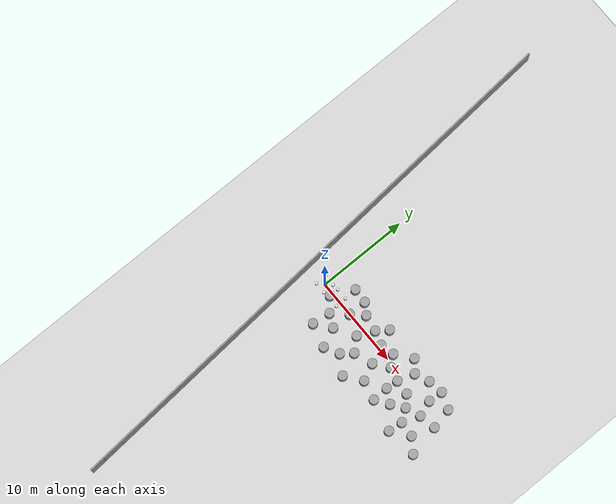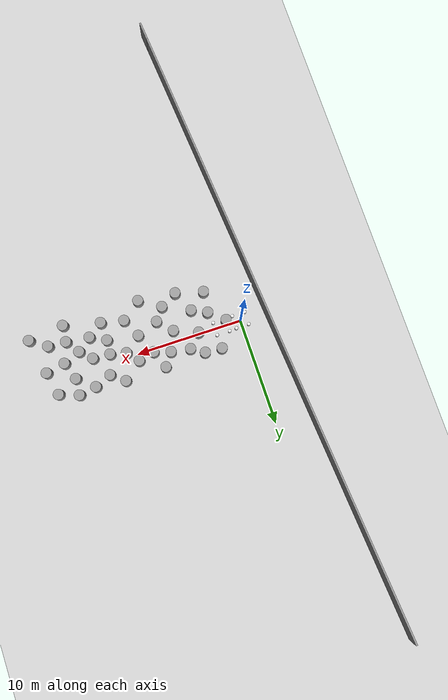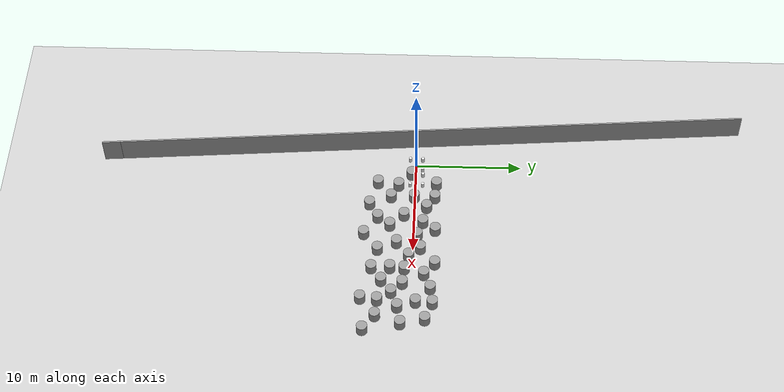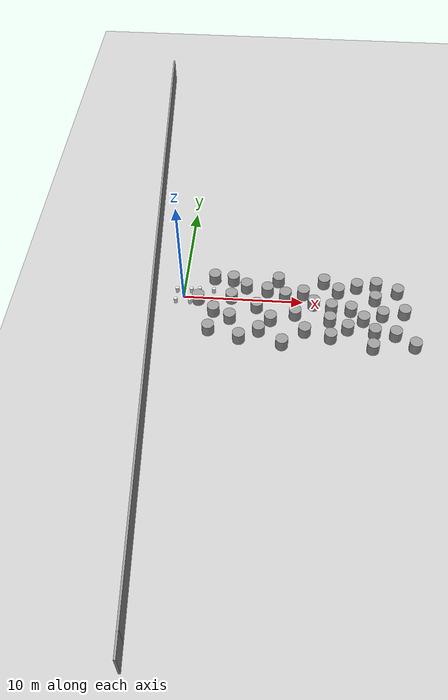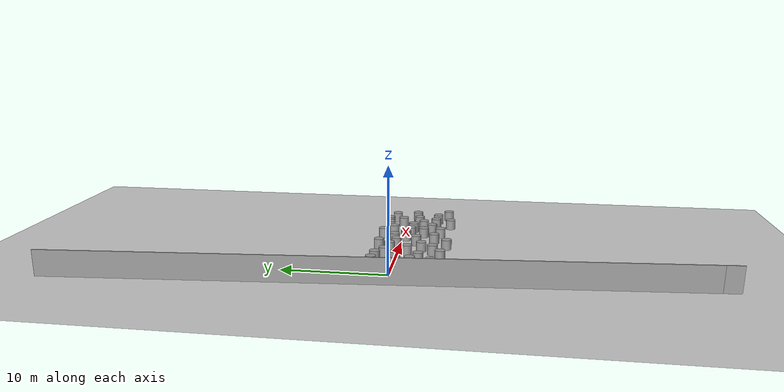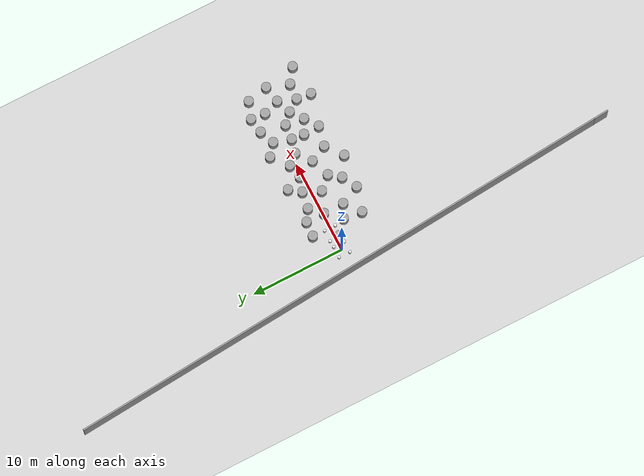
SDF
<sdf version="1.6">
 <world name="default">
  <model name="ground_plane">
   <static>1</static>
   <link name="link">
    <collision name="collision">
     <geometry><plane><normal>0 0 1</normal><size>100 100</size></plane></geometry>
     <surface>
      <contact><collide_bitmask>65535</collide_bitmask></contact>
      <friction><ode><mu>100</mu><mu2>50</mu2></ode></friction>
     </surface>
    </collision>
    <visual name="visual">
     <cast_shadows>0</cast_shadows>
     <geometry><plane><normal>0 0 1</normal><size>100 100</size></plane></geometry>
     <material>
      <script><uri>file://media/materials/scripts/gazebo.material</uri><name>Gazebo/Grey</name></script>
     </material>
    </visual>
   </link>
  </model>
  <model name="obstacle">
   <link name="obstacle">
    <collision name="obstacle_1">
     <pose>-0.6 -0.6 0.25 0 -0 0</pose>
     <geometry><cylinder><radius>0.15</radius><length>0.5</length></cylinder></geometry>
    </collision>
    <visual name="obstacle_1">
     <pose>-0.6 -0.6 0.25 0 -0 0</pose>
     <geometry><cylinder><radius>0.15</radius><length>0.5</length></cylinder></geometry>
     <material>
      <script><uri>file://media/materials/scripts/gazebo.material</uri><name>Gazebo/White</name></script>
     </material>
    </visual>
    <collision name="obstacle_2">
     <pose>-0.6 0.6 0.25 0 -0 0</pose>
     <geometry><cylinder><radius>0.15</radius><length>0.5</length></cylinder></geometry>
    </collision>
    <visual name="obstacle_2">
     <pose>-0.6 0.6 0.25 0 -0 0</pose>
     <geometry><cylinder><radius>0.15</radius><length>0.5</length></cylinder></geometry>
     <material>
      <script><uri>file://media/materials/scripts/gazebo.material</uri><name>Gazebo/White</name></script>
     </material>
    </visual>
    <collision name="obstacle_3">
     <pose>0.6 -0.6 0.25 0 -0 0</pose>
     <geometry><cylinder><radius>0.15</radius><length>0.5</length></cylinder></geometry>
    </collision>
    <visual name="obstacle_3">
     <pose>0.6 -0.6 0.25 0 -0 0</pose>
     <geometry><cylinder><radius>0.15</radius><length>0.5</length></cylinder></geometry>
     <material>
      <script><uri>file://media/materials/scripts/gazebo.material</uri><name>Gazebo/White</name></script>
     </material>
    </visual>
    <collision name="obstacle_4">
     <pose>0.6 0.6 0.25 0 -0 0</pose>
     <geometry><cylinder><radius>0.15</radius><length>0.5</length></cylinder></geometry>
    </collision>
    <visual name="obstacle_4">
     <pose>0.6 0.6 0.25 0 -0 0</pose>
     <geometry><cylinder><radius>0.15</radius><length>0.5</length></cylinder></geometry>
     <material>
      <script><uri>file://media/materials/scripts/gazebo.material</uri><name>Gazebo/White</name></script>
     </material>
    </visual>
    <inertial>
     <inertia><ixx>1</ixx><ixy>0</ixy><ixz>0</ixz><iyy>1</iyy><iyz>0</iyz><izz>1</izz></inertia>
     <mass>1</mass>
    </inertial>
   </link>
  </model>
  <model name="obstacle_clone">
   <pose>1.88303 0.06065 0.049997 -4e-06 5e-06 0</pose>
   <link name="obstacle_clone">
    <collision name="obstacle_01">
     <pose>-0.6 -0.6 0.25 0 -0 0</pose>
     <geometry><cylinder><radius>0.15</radius><length>0.5</length></cylinder></geometry>
    </collision>
    <visual name="obstacle_01">
     <pose>-0.6 -0.6 0.25 0 -0 0</pose>
     <geometry><cylinder><radius>0.15</radius><length>0.5</length></cylinder></geometry>
     <material>
      <script><uri>file://media/materials/scripts/gazebo.material</uri><name>Gazebo/White</name></script>
     </material>
    </visual>
    <collision name="obstacle_02">
     <pose>-0.6 0.6 0.25 0 -0 0</pose>
     <geometry><cylinder><radius>0.15</radius><length>0.5</length></cylinder></geometry>
    </collision>
    <visual name="obstacle_02">
     <pose>-0.6 0.6 0.25 0 -0 0</pose>
     <geometry><cylinder><radius>0.15</radius><length>0.5</length></cylinder></geometry>
     <material>
      <script><uri>file://media/materials/scripts/gazebo.material</uri><name>Gazebo/White</name></script>
     </material>
    </visual>
    <collision name="obstacle_03">
     <pose>0.6 -0.6 0.25 0 -0 0</pose>
     <geometry><cylinder><radius>0.15</radius><length>0.5</length></cylinder></geometry>
    </collision>
    <visual name="obstacle_03">
     <pose>0.6 -0.6 0.25 0 -0 0</pose>
     <geometry><cylinder><radius>0.15</radius><length>0.5</length></cylinder></geometry>
     <material>
      <script><uri>file://media/materials/scripts/gazebo.material</uri><name>Gazebo/White</name></script>
     </material>
    </visual>
    <collision name="obstacle_04">
     <pose>0.6 0.6 0.25 0 -0 0</pose>
     <geometry><cylinder><radius>0.15</radius><length>0.5</length></cylinder></geometry>
    </collision>
    <visual name="obstacle_04">
     <pose>0.6 0.6 0.25 0 -0 0</pose>
     <geometry><cylinder><radius>0.15</radius><length>0.5</length></cylinder></geometry>
     <material>
      <script><uri>file://media/materials/scripts/gazebo.material</uri><name>Gazebo/White</name></script>
     </material>
    </visual>
    <inertial>
     <inertia><ixx>1</ixx><ixy>0</ixy><ixz>0</ixz><iyy>1</iyy><iyz>0</iyz><izz>1</izz></inertia>
     <mass>1</mass>
    </inertial>
   </link>
  </model>
  <model name="unit_cylinder">
   <pose>6.99929 0.832209 0.499994 -4e-06 -3e-06 -0</pose>
   <link name="link">
    <inertial>
     <mass>1</mass>
     <inertia><ixx>0.145833</ixx><ixy>0</ixy><ixz>0</ixz><iyy>0.145833</iyy><iyz>0</iyz><izz>0.125</izz></inertia>
    </inertial>
    <collision name="collision">
     <geometry><cylinder><radius>0.5</radius><length>1</length></cylinder></geometry>
    </collision>
    <visual name="visual">
     <geometry><cylinder><radius>0.5</radius><length>1</length></cylinder></geometry>
     <material>
      <script><name>Gazebo/Grey</name><uri>file://media/materials/scripts/gazebo.material</uri></script>
     </material>
    </visual>
   </link>
  </model>
  <model name="unit_cylinder_0">
   <pose>4.06146 -2.25804 0.499998 3e-06 -2e-06 0</pose>
   <link name="link">
    <inertial>
     <mass>1</mass>
     <inertia><ixx>0.145833</ixx><ixy>0</ixy><ixz>0</ixz><iyy>0.145833</iyy><iyz>0</iyz><izz>0.125</izz></inertia>
    </inertial>
    <collision name="collision">
     <geometry><cylinder><radius>0.5</radius><length>1</length></cylinder></geometry>
    </collision>
    <visual name="visual">
     <geometry><cylinder><radius>0.5</radius><length>1</length></cylinder></geometry>
     <material>
      <script><name>Gazebo/Grey</name><uri>file://media/materials/scripts/gazebo.material</uri></script>
     </material>
    </visual>
   </link>
  </model>
  <model name="unit_cylinder_1">
   <pose>11.6938 2.06939 0.499998 3e-06 -2e-06 0</pose>
   <link name="link">
    <inertial>
     <mass>1</mass>
     <inertia><ixx>0.145833</ixx><ixy>0</ixy><ixz>0</ixz><iyy>0.145833</iyy><iyz>0</iyz><izz>0.125</izz></inertia>
    </inertial>
    <collision name="collision">
     <geometry><cylinder><radius>0.5</radius><length>1</length></cylinder></geometry>
    </collision>
    <visual name="visual">
     <geometry><cylinder><radius>0.5</radius><length>1</length></cylinder></geometry>
     <material>
      <script><name>Gazebo/Grey</name><uri>file://media/materials/scripts/gazebo.material</uri></script>
     </material>
    </visual>
   </link>
  </model>
  <model name="unit_cylinder_2">
   <pose>9.38691 -1.54603 0.499998 3e-06 -2e-06 0</pose>
   <link name="link">
    <inertial>
     <mass>1</mass>
     <inertia><ixx>0.145833</ixx><ixy>0</ixy><ixz>0</ixz><iyy>0.145833</iyy><iyz>0</iyz><izz>0.125</izz></inertia>
    </inertial>
    <collision name="collision">
     <geometry><cylinder><radius>0.5</radius><length>1</length></cylinder></geometry>
    </collision>
    <visual name="visual">
     <geometry><cylinder><radius>0.5</radius><length>1</length></cylinder></geometry>
     <material>
      <script><name>Gazebo/Grey</name><uri>file://media/materials/scripts/gazebo.material</uri></script>
     </material>
    </visual>
   </link>
  </model>
  <model name="unit_cylinder_3">
   <pose>15.6885 -4.63383 0.499998 3e-06 -2e-06 0</pose>
   <link name="link">
    <inertial>
     <mass>1</mass>
     <inertia><ixx>0.145833</ixx><ixy>0</ixy><ixz>0</ixz><iyy>0.145833</iyy><iyz>0</iyz><izz>0.125</izz></inertia>
    </inertial>
    <collision name="collision">
     <geometry><cylinder><radius>0.5</radius><length>1</length></cylinder></geometry>
    </collision>
    <visual name="visual">
     <geometry><cylinder><radius>0.5</radius><length>1</length></cylinder></geometry>
     <material>
      <script><name>Gazebo/Grey</name><uri>file://media/materials/scripts/gazebo.material</uri></script>
     </material>
    </visual>
   </link>
  </model>
  <model name="unit_cylinder_4">
   <pose>15.969 0.435377 0.499998 3e-06 -2e-06 0</pose>
   <link name="link">
    <inertial>
     <mass>1</mass>
     <inertia><ixx>0.145833</ixx><ixy>0</ixy><ixz>0</ixz><iyy>0.145833</iyy><iyz>0</iyz><izz>0.125</izz></inertia>
    </inertial>
    <collision name="collision">
     <geometry><cylinder><radius>0.5</radius><length>1</length></cylinder></geometry>
    </collision>
    <visual name="visual">
     <geometry><cylinder><radius>0.5</radius><length>1</length></cylinder></geometry>
     <material>
      <script><name>Gazebo/Grey</name><uri>file://media/materials/scripts/gazebo.material</uri></script>
     </material>
    </visual>
   </link>
  </model>
  <model name="unit_cylinder_13">
   <pose>12.3468 -0.72397 0.499993 -4e-06 -2e-06 -0</pose>
   <link name="link">
    <inertial>
     <mass>1</mass>
     <inertia><ixx>0.145833</ixx><ixy>0</ixy><ixz>0</ixz><iyy>0.145833</iyy><iyz>0</iyz><izz>0.125</izz></inertia>
    </inertial>
    <collision name="collision">
     <geometry><cylinder><radius>0.5</radius><length>1</length></cylinder></geometry>
    </collision>
    <visual name="visual">
     <geometry><cylinder><radius>0.5</radius><length>1</length></cylinder></geometry>
     <material>
      <script><name>Gazebo/Grey</name><uri>file://media/materials/scripts/gazebo.material</uri></script>
     </material>
    </visual>
   </link>
  </model>
  <model name="unit_cylinder_31">
   <pose>10.2116 -3.2923 0.499992 -3e-06 2e-06 0</pose>
   <link name="link">
    <inertial>
     <mass>1</mass>
     <inertia><ixx>0.145833</ixx><ixy>0</ixy><ixz>0</ixz><iyy>0.145833</iyy><iyz>0</iyz><izz>0.125</izz></inertia>
    </inertial>
    <collision name="collision">
     <geometry><cylinder><radius>0.5</radius><length>1</length></cylinder></geometry>
    </collision>
    <visual name="visual">
     <geometry><cylinder><radius>0.5</radius><length>1</length></cylinder></geometry>
     <material>
      <script><name>Gazebo/Grey</name><uri>file://media/materials/scripts/gazebo.material</uri></script>
     </material>
    </visual>
   </link>
  </model>
  <model name="wall_up02_1">
   <pose>-2.45978 0.60731 0 0 -0 1.64986</pose>
   <link name="Wall_0">
    <collision name="Wall_0_Collision">
     <geometry><box><size>60 0.15 2.5</size></box></geometry>
     <pose>0 0 1.25 0 -0 0</pose>
    </collision>
    <visual name="Wall_0_Visual">
     <pose>0 0 1.25 0 -0 0</pose>
     <geometry><box><size>60 0.15 2.5</size></box></geometry>
     <material>
      <script><uri>file://media/materials/scripts/gazebo.material</uri><name>Gazebo/Grey</name></script>
      <ambient>1 1 1 1</ambient>
     </material>
     <meta><layer>0</layer></meta>
    </visual>
    <pose>0.799999 0 0 0 -0 3.14159</pose>
   </link>
   <link name="Wall_1">
    <collision name="Wall_1_Collision">
     <geometry><box><size>1.75 0.15 2.5</size></box></geometry>
     <pose>0 0 1.25 0 -0 0</pose>
    </collision>
    <visual name="Wall_1_Visual">
     <pose>0 0 1.25 0 -0 0</pose>
     <geometry><box><size>1.75 0.15 2.5</size></box></geometry>
     <material>
      <script><uri>file://media/materials/scripts/gazebo.material</uri><name>Gazebo/Grey</name></script>
      <ambient>0 0 0 1</ambient>
     </material>
     <meta><layer>0</layer></meta>
    </visual>
    <pose>-29.925 0 0 0 -0 3.14159</pose>
   </link>
   <static>1</static>
  </model>
  <model name="unit_cylinder_32">
   <pose>2.42276 -3.5512 0.499998 3e-06 -2e-06 0</pose>
   <link name="link">
    <inertial>
     <mass>1</mass>
     <inertia><ixx>0.145833</ixx><ixy>0</ixy><ixz>0</ixz><iyy>0.145833</iyy><iyz>0</iyz><izz>0.125</izz></inertia>
    </inertial>
    <collision name="collision">
     <geometry><cylinder><radius>0.5</radius><length>1</length></cylinder></geometry>
    </collision>
    <visual name="visual">
     <geometry><cylinder><radius>0.5</radius><length>1</length></cylinder></geometry>
     <material>
      <script><name>Gazebo/Grey</name><uri>file://media/materials/scripts/gazebo.material</uri></script>
     </material>
    </visual>
   </link>
  </model>
  <model name="unit_cylinder_33">
   <pose>4.0393 -0.07105 0.499998 3e-06 -2e-06 0</pose>
   <link name="link">
    <inertial>
     <mass>1</mass>
     <inertia><ixx>0.145833</ixx><ixy>0</ixy><ixz>0</ixz><iyy>0.145833</iyy><iyz>0</iyz><izz>0.125</izz></inertia>
    </inertial>
    <collision name="collision">
     <geometry><cylinder><radius>0.5</radius><length>1</length></cylinder></geometry>
    </collision>
    <visual name="visual">
     <geometry><cylinder><radius>0.5</radius><length>1</length></cylinder></geometry>
     <material>
      <script><name>Gazebo/Grey</name><uri>file://media/materials/scripts/gazebo.material</uri></script>
     </material>
    </visual>
   </link>
  </model>
  <model name="unit_cylinder_34">
   <pose>2.46949 1.99363 0.499994 -4e-06 -3e-06 -0</pose>
   <link name="link">
    <inertial>
     <mass>1</mass>
     <inertia><ixx>0.145833</ixx><ixy>0</ixy><ixz>0</ixz><iyy>0.145833</iyy><iyz>0</iyz><izz>0.125</izz></inertia>
    </inertial>
    <collision name="collision">
     <geometry><cylinder><radius>0.5</radius><length>1</length></cylinder></geometry>
    </collision>
    <visual name="visual">
     <geometry><cylinder><radius>0.5</radius><length>1</length></cylinder></geometry>
     <material>
      <script><name>Gazebo/Grey</name><uri>file://media/materials/scripts/gazebo.material</uri></script>
     </material>
    </visual>
   </link>
  </model>
  <model name="unit_cylinder_35">
   <pose>7.86543 2.01658 0.499998 3e-06 -2e-06 0</pose>
   <link name="link">
    <inertial>
     <mass>1</mass>
     <inertia><ixx>0.145833</ixx><ixy>0</ixy><ixz>0</ixz><iyy>0.145833</iyy><iyz>0</iyz><izz>0.125</izz></inertia>
    </inertial>
    <collision name="collision">
     <geometry><cylinder><radius>0.5</radius><length>1</length></cylinder></geometry>
    </collision>
    <visual name="visual">
     <geometry><cylinder><radius>0.5</radius><length>1</length></cylinder></geometry>
     <material>
      <script><name>Gazebo/Grey</name><uri>file://media/materials/scripts/gazebo.material</uri></script>
     </material>
    </visual>
   </link>
  </model>
  <model name="unit_cylinder_36">
   <pose>6.51456 -3.42246 0.499994 -4e-06 -3e-06 -0</pose>
   <link name="link">
    <inertial>
     <mass>1</mass>
     <inertia><ixx>0.145833</ixx><ixy>0</ixy><ixz>0</ixz><iyy>0.145833</iyy><iyz>0</iyz><izz>0.125</izz></inertia>
    </inertial>
    <collision name="collision">
     <geometry><cylinder><radius>0.5</radius><length>1</length></cylinder></geometry>
    </collision>
    <visual name="visual">
     <geometry><cylinder><radius>0.5</radius><length>1</length></cylinder></geometry>
     <material>
      <script><name>Gazebo/Grey</name><uri>file://media/materials/scripts/gazebo.material</uri></script>
     </material>
    </visual>
   </link>
  </model>
  <model name="unit_cylinder_37">
   <pose>6.19796 -0.96 0.499998 3e-06 -2e-06 0</pose>
   <link name="link">
    <inertial>
     <mass>1</mass>
     <inertia><ixx>0.145833</ixx><ixy>0</ixy><ixz>0</ixz><iyy>0.145833</iyy><iyz>0</iyz><izz>0.125</izz></inertia>
    </inertial>
    <collision name="collision">
     <geometry><cylinder><radius>0.5</radius><length>1</length></cylinder></geometry>
    </collision>
    <visual name="visual">
     <geometry><cylinder><radius>0.5</radius><length>1</length></cylinder></geometry>
     <material>
      <script><name>Gazebo/Grey</name><uri>file://media/materials/scripts/gazebo.material</uri></script>
     </material>
    </visual>
   </link>
  </model>
  <model name="unit_cylinder_38">
   <pose>13.6872 -2.8073 0.499999 0 -0 0</pose>
   <link name="link">
    <inertial>
     <mass>1</mass>
     <inertia><ixx>0.145833</ixx><ixy>0</ixy><ixz>0</ixz><iyy>0.145833</iyy><iyz>0</iyz><izz>0.125</izz></inertia>
    </inertial>
    <collision name="collision">
     <geometry><cylinder><radius>0.5</radius><length>1</length></cylinder></geometry>
    </collision>
    <visual name="visual">
     <geometry><cylinder><radius>0.5</radius><length>1</length></cylinder></geometry>
     <material>
      <script><name>Gazebo/Grey</name><uri>file://media/materials/scripts/gazebo.material</uri></script>
     </material>
    </visual>
   </link>
  </model>
  <model name="unit_cylinder_39">
   <pose>12.2342 -2.05305 0.499992 -3e-06 2e-06 0</pose>
   <link name="link">
    <inertial>
     <mass>1</mass>
     <inertia><ixx>0.145833</ixx><ixy>0</ixy><ixz>0</ixz><iyy>0.145833</iyy><iyz>0</iyz><izz>0.125</izz></inertia>
    </inertial>
    <collision name="collision">
     <geometry><cylinder><radius>0.5</radius><length>1</length></cylinder></geometry>
    </collision>
    <visual name="visual">
     <geometry><cylinder><radius>0.5</radius><length>1</length></cylinder></geometry>
     <material>
      <script><name>Gazebo/Grey</name><uri>file://media/materials/scripts/gazebo.material</uri></script>
     </material>
    </visual>
   </link>
  </model>
  <model name="unit_cylinder_40">
   <pose>9.99238 0.699421 0.499993 -3e-06 2e-06 0</pose>
   <link name="link">
    <inertial>
     <mass>1</mass>
     <inertia><ixx>0.145833</ixx><ixy>0</ixy><ixz>0</ixz><iyy>0.145833</iyy><iyz>0</iyz><izz>0.125</izz></inertia>
    </inertial>
    <collision name="collision">
     <geometry><cylinder><radius>0.5</radius><length>1</length></cylinder></geometry>
    </collision>
    <visual name="visual">
     <geometry><cylinder><radius>0.5</radius><length>1</length></cylinder></geometry>
     <material>
      <script><name>Gazebo/Grey</name><uri>file://media/materials/scripts/gazebo.material</uri></script>
     </material>
    </visual>
   </link>
  </model>
  <model name="unit_cylinder_41">
   <pose>16.0707 1.97233 0.499998 3e-06 -3e-06 0</pose>
   <link name="link">
    <inertial>
     <mass>1</mass>
     <inertia><ixx>0.145833</ixx><ixy>0</ixy><ixz>0</ixz><iyy>0.145833</iyy><iyz>0</iyz><izz>0.125</izz></inertia>
    </inertial>
    <collision name="collision">
     <geometry><cylinder><radius>0.5</radius><length>1</length></cylinder></geometry>
    </collision>
    <visual name="visual">
     <geometry><cylinder><radius>0.5</radius><length>1</length></cylinder></geometry>
     <material>
      <script><name>Gazebo/Grey</name><uri>file://media/materials/scripts/gazebo.material</uri></script>
     </material>
    </visual>
   </link>
  </model>
  <model name="unit_cylinder_42">
   <pose>18.3381 -0.893437 0.499998 3e-06 -3e-06 0</pose>
   <link name="link">
    <inertial>
     <mass>1</mass>
     <inertia><ixx>0.145833</ixx><ixy>0</ixy><ixz>0</ixz><iyy>0.145833</iyy><iyz>0</iyz><izz>0.125</izz></inertia>
    </inertial>
    <collision name="collision">
     <geometry><cylinder><radius>0.5</radius><length>1</length></cylinder></geometry>
    </collision>
    <visual name="visual">
     <geometry><cylinder><radius>0.5</radius><length>1</length></cylinder></geometry>
     <material>
      <script><name>Gazebo/Grey</name><uri>file://media/materials/scripts/gazebo.material</uri></script>
     </material>
    </visual>
   </link>
  </model>
  <model name="unit_cylinder_53">
   <pose>4.96385 -4.25942 0.499992 -3e-06 3e-06 0</pose>
   <link name="link">
    <inertial>
     <mass>1</mass>
     <inertia><ixx>0.145833</ixx><ixy>0</ixy><ixz>0</ixz><iyy>0.145833</iyy><iyz>0</iyz><izz>0.125</izz></inertia>
    </inertial>
    <collision name="collision">
     <geometry><cylinder><radius>0.5</radius><length>1</length></cylinder></geometry>
    </collision>
    <visual name="visual">
     <geometry><cylinder><radius>0.5</radius><length>1</length></cylinder></geometry>
     <material>
      <script><name>Gazebo/Grey</name><uri>file://media/materials/scripts/gazebo.material</uri></script>
     </material>
    </visual>
   </link>
  </model>
  <model name="unit_cylinder_54">
   <pose>1.29721 -0.388281 0.499992 -3e-06 3e-06 0</pose>
   <link name="link">
    <inertial>
     <mass>1</mass>
     <inertia><ixx>0.145833</ixx><ixy>0</ixy><ixz>0</ixz><iyy>0.145833</iyy><iyz>0</iyz><izz>0.125</izz></inertia>
    </inertial>
    <collision name="collision">
     <geometry><cylinder><radius>0.5</radius><length>1</length></cylinder></geometry>
    </collision>
    <visual name="visual">
     <geometry><cylinder><radius>0.5</radius><length>1</length></cylinder></geometry>
     <material>
      <script><name>Gazebo/Grey</name><uri>file://media/materials/scripts/gazebo.material</uri></script>
     </material>
    </visual>
   </link>
  </model>
  <model name="unit_cylinder_55">
   <pose>8.43822 -4.65171 0.499998 3e-06 -3e-06 0</pose>
   <link name="link">
    <inertial>
     <mass>1</mass>
     <inertia><ixx>0.145833</ixx><ixy>0</ixy><ixz>0</ixz><iyy>0.145833</iyy><iyz>0</iyz><izz>0.125</izz></inertia>
    </inertial>
    <collision name="collision">
     <geometry><cylinder><radius>0.5</radius><length>1</length></cylinder></geometry>
    </collision>
    <visual name="visual">
     <geometry><cylinder><radius>0.5</radius><length>1</length></cylinder></geometry>
     <material>
      <script><name>Gazebo/Grey</name><uri>file://media/materials/scripts/gazebo.material</uri></script>
     </material>
    </visual>
   </link>
  </model>
  <model name="unit_cylinder_56">
   <pose>12.9038 1.09735 0.499998 3e-06 4e-06 -0</pose>
   <link name="link">
    <inertial>
     <mass>1</mass>
     <inertia><ixx>0.145833</ixx><ixy>0</ixy><ixz>0</ixz><iyy>0.145833</iyy><iyz>0</iyz><izz>0.125</izz></inertia>
    </inertial>
    <collision name="collision">
     <geometry><cylinder><radius>0.5</radius><length>1</length></cylinder></geometry>
    </collision>
    <visual name="visual">
     <geometry><cylinder><radius>0.5</radius><length>1</length></cylinder></geometry>
     <material>
      <script><name>Gazebo/Grey</name><uri>file://media/materials/scripts/gazebo.material</uri></script>
     </material>
    </visual>
   </link>
  </model>
  <model name="unit_cylinder_57">
   <pose>14.9718 -1.83779 0.499998 3e-06 4e-06 -0</pose>
   <link name="link">
    <inertial>
     <mass>1</mass>
     <inertia><ixx>0.145833</ixx><ixy>0</ixy><ixz>0</ixz><iyy>0.145833</iyy><iyz>0</iyz><izz>0.125</izz></inertia>
    </inertial>
    <collision name="collision">
     <geometry><cylinder><radius>0.5</radius><length>1</length></cylinder></geometry>
    </collision>
    <visual name="visual">
     <geometry><cylinder><radius>0.5</radius><length>1</length></cylinder></geometry>
     <material>
      <script><name>Gazebo/Grey</name><uri>file://media/materials/scripts/gazebo.material</uri></script>
     </material>
    </visual>
   </link>
  </model>
  <model name="unit_cylinder_58">
   <pose>12.3108 -3.7773 0.499998 3e-06 4e-06 -0</pose>
   <link name="link">
    <inertial>
     <mass>1</mass>
     <inertia><ixx>0.145833</ixx><ixy>0</ixy><ixz>0</ixz><iyy>0.145833</iyy><iyz>0</iyz><izz>0.125</izz></inertia>
    </inertial>
    <collision name="collision">
     <geometry><cylinder><radius>0.5</radius><length>1</length></cylinder></geometry>
    </collision>
    <visual name="visual">
     <geometry><cylinder><radius>0.5</radius><length>1</length></cylinder></geometry>
     <material>
      <script><name>Gazebo/Grey</name><uri>file://media/materials/scripts/gazebo.material</uri></script>
     </material>
    </visual>
   </link>
  </model>
  <model name="unit_cylinder_59">
   <pose>7.40503 -2.25633 0.499998 3e-06 4e-06 -0</pose>
   <link name="link">
    <inertial>
     <mass>1</mass>
     <inertia><ixx>0.145833</ixx><ixy>0</ixy><ixz>0</ixz><iyy>0.145833</iyy><iyz>0</iyz><izz>0.125</izz></inertia>
    </inertial>
    <collision name="collision">
     <geometry><cylinder><radius>0.5</radius><length>1</length></cylinder></geometry>
    </collision>
    <visual name="visual">
     <geometry><cylinder><radius>0.5</radius><length>1</length></cylinder></geometry>
     <material>
      <script><name>Gazebo/Grey</name><uri>file://media/materials/scripts/gazebo.material</uri></script>
     </material>
    </visual>
   </link>
  </model>
  <model name="unit_cylinder_60">
   <pose>17.5274 -3.20794 0.499993 -3e-06 -3e-06 0</pose>
   <link name="link">
    <inertial>
     <mass>1</mass>
     <inertia><ixx>0.145833</ixx><ixy>0</ixy><ixz>0</ixz><iyy>0.145833</iyy><iyz>0</iyz><izz>0.125</izz></inertia>
    </inertial>
    <collision name="collision">
     <geometry><cylinder><radius>0.5</radius><length>1</length></cylinder></geometry>
    </collision>
    <visual name="visual">
     <geometry><cylinder><radius>0.5</radius><length>1</length></cylinder></geometry>
     <material>
      <script><name>Gazebo/Grey</name><uri>file://media/materials/scripts/gazebo.material</uri></script>
     </material>
    </visual>
   </link>
  </model>
  <model name="unit_cylinder_62">
   <pose>17.8474 1.325 0.499993 -3e-06 -3e-06 0</pose>
   <link name="link">
    <inertial>
     <mass>1</mass>
     <inertia><ixx>0.145833</ixx><ixy>0</ixy><ixz>0</ixz><iyy>0.145833</iyy><iyz>0</iyz><izz>0.125</izz></inertia>
    </inertial>
    <collision name="collision">
     <geometry><cylinder><radius>0.5</radius><length>1</length></cylinder></geometry>
    </collision>
    <visual name="visual">
     <geometry><cylinder><radius>0.5</radius><length>1</length></cylinder></geometry>
     <material>
      <script><name>Gazebo/Grey</name><uri>file://media/materials/scripts/gazebo.material</uri></script>
     </material>
    </visual>
   </link>
  </model>
  <model name="unit_cylinder_65">
   <pose>10.8872 -0.359234 0.499993 -3e-06 -4e-06 -0</pose>
   <link name="link">
    <inertial>
     <mass>1</mass>
     <inertia><ixx>0.145833</ixx><ixy>0</ixy><ixz>0</ixz><iyy>0.145833</iyy><iyz>0</iyz><izz>0.125</izz></inertia>
    </inertial>
    <collision name="collision">
     <geometry><cylinder><radius>0.5</radius><length>1</length></cylinder></geometry>
    </collision>
    <visual name="visual">
     <geometry><cylinder><radius>0.5</radius><length>1</length></cylinder></geometry>
     <material>
      <script><name>Gazebo/Grey</name><uri>file://media/materials/scripts/gazebo.material</uri></script>
     </material>
    </visual>
   </link>
  </model>
  <model name="unit_cylinder_66">
   <pose>13.952 -0.84442 0.499993 -3e-06 -4e-06 -0</pose>
   <link name="link">
    <inertial>
     <mass>1</mass>
     <inertia><ixx>0.145833</ixx><ixy>0</ixy><ixz>0</ixz><iyy>0.145833</iyy><iyz>0</iyz><izz>0.125</izz></inertia>
    </inertial>
    <collision name="collision">
     <geometry><cylinder><radius>0.5</radius><length>1</length></cylinder></geometry>
    </collision>
    <visual name="visual">
     <geometry><cylinder><radius>0.5</radius><length>1</length></cylinder></geometry>
     <material>
      <script><name>Gazebo/Grey</name><uri>file://media/materials/scripts/gazebo.material</uri></script>
     </material>
    </visual>
   </link>
  </model>
  <model name="unit_cylinder_67">
   <pose>14.4509 1.72355 0.499993 -3e-06 -4e-06 -0</pose>
   <link name="link">
    <inertial>
     <mass>1</mass>
     <inertia><ixx>0.145833</ixx><ixy>0</ixy><ixz>0</ixz><iyy>0.145833</iyy><iyz>0</iyz><izz>0.125</izz></inertia>
    </inertial>
    <collision name="collision">
     <geometry><cylinder><radius>0.5</radius><length>1</length></cylinder></geometry>
    </collision>
    <visual name="visual">
     <geometry><cylinder><radius>0.5</radius><length>1</length></cylinder></geometry>
     <material>
      <script><name>Gazebo/Grey</name><uri>file://media/materials/scripts/gazebo.material</uri></script>
     </material>
    </visual>
   </link>
  </model>
  <model name="unit_cylinder_68">
   <pose>8.50384 0.347204 0.499997 3e-06 4e-06 -0</pose>
   <link name="link">
    <inertial>
     <mass>1</mass>
     <inertia><ixx>0.145833</ixx><ixy>0</ixy><ixz>0</ixz><iyy>0.145833</iyy><iyz>0</iyz><izz>0.125</izz></inertia>
    </inertial>
    <collision name="collision">
     <geometry><cylinder><radius>0.5</radius><length>1</length></cylinder></geometry>
    </collision>
    <visual name="visual">
     <geometry><cylinder><radius>0.5</radius><length>1</length></cylinder></geometry>
     <material>
      <script><name>Gazebo/Grey</name><uri>file://media/materials/scripts/gazebo.material</uri></script>
     </material>
    </visual>
   </link>
  </model>
  <model name="unit_cylinder_69">
   <pose>5.22097 1.13735 0.499997 3e-06 4e-06 -0</pose>
   <link name="link">
    <inertial>
     <mass>1</mass>
     <inertia><ixx>0.145833</ixx><ixy>0</ixy><ixz>0</ixz><iyy>0.145833</iyy><iyz>0</iyz><izz>0.125</izz></inertia>
    </inertial>
    <collision name="collision">
     <geometry><cylinder><radius>0.5</radius><length>1</length></cylinder></geometry>
    </collision>
    <visual name="visual">
     <geometry><cylinder><radius>0.5</radius><length>1</length></cylinder></geometry>
     <material>
      <script><name>Gazebo/Grey</name><uri>file://media/materials/scripts/gazebo.material</uri></script>
     </material>
    </visual>
   </link>
  </model>
  <model name="unit_cylinder_70">
   <pose>4.05287 1.88505 0.499993 -3e-06 -4e-06 -0</pose>
   <link name="link">
    <inertial>
     <mass>1</mass>
     <inertia><ixx>0.145833</ixx><ixy>0</ixy><ixz>0</ixz><iyy>0.145833</iyy><iyz>0</iyz><izz>0.125</izz></inertia>
    </inertial>
    <collision name="collision">
     <geometry><cylinder><radius>0.5</radius><length>1</length></cylinder></geometry>
    </collision>
    <visual name="visual">
     <geometry><cylinder><radius>0.5</radius><length>1</length></cylinder></geometry>
     <material>
      <script><name>Gazebo/Grey</name><uri>file://media/materials/scripts/gazebo.material</uri></script>
     </material>
    </visual>
   </link>
  </model>
  <model name="unit_cylinder_71">
   <pose>15.8505 -3.08555 0.499997 3e-06 4e-06 -0</pose>
   <link name="link">
    <inertial>
     <mass>1</mass>
     <inertia><ixx>0.145833</ixx><ixy>0</ixy><ixz>0</ixz><iyy>0.145833</iyy><iyz>0</iyz><izz>0.125</izz></inertia>
    </inertial>
    <collision name="collision">
     <geometry><cylinder><radius>0.5</radius><length>1</length></cylinder></geometry>
    </collision>
    <visual name="visual">
     <geometry><cylinder><radius>0.5</radius><length>1</length></cylinder></geometry>
     <material>
      <script><name>Gazebo/Grey</name><uri>file://media/materials/scripts/gazebo.material</uri></script>
     </material>
    </visual>
   </link>
  </model>
  <model name="unit_cylinder_72">
   <pose>16.5438 -1.22309 0.499993 -3e-06 -4e-06 -0</pose>
   <link name="link">
    <inertial>
     <mass>1</mass>
     <inertia><ixx>0.145833</ixx><ixy>0</ixy><ixz>0</ixz><iyy>0.145833</iyy><iyz>0</iyz><izz>0.125</izz></inertia>
    </inertial>
    <collision name="collision">
     <geometry><cylinder><radius>0.5</radius><length>1</length></cylinder></geometry>
    </collision>
    <visual name="visual">
     <geometry><cylinder><radius>0.5</radius><length>1</length></cylinder></geometry>
     <material>
      <script><name>Gazebo/Grey</name><uri>file://media/materials/scripts/gazebo.material</uri></script>
     </material>
    </visual>
   </link>
  </model>
  <model name="unit_cylinder_73">
   <pose>19.0345 -4.26986 0.499997 3e-06 4e-06 -0</pose>
   <link name="link">
    <inertial>
     <mass>1</mass>
     <inertia><ixx>0.145833</ixx><ixy>0</ixy><ixz>0</ixz><iyy>0.145833</iyy><iyz>0</iyz><izz>0.125</izz></inertia>
    </inertial>
    <collision name="collision">
     <geometry><cylinder><radius>0.5</radius><length>1</length></cylinder></geometry>
    </collision>
    <visual name="visual">
     <geometry><cylinder><radius>0.5</radius><length>1</length></cylinder></geometry>
     <material>
      <script><name>Gazebo/Grey</name><uri>file://media/materials/scripts/gazebo.material</uri></script>
     </material>
    </visual>
   </link>
  </model>
  <model name="unit_cylinder_76">
   <pose>2.66501 -1.58938 0.499997 3e-06 4e-06 -0</pose>
   <link name="link">
    <inertial>
     <mass>1</mass>
     <inertia><ixx>0.145833</ixx><ixy>0</ixy><ixz>0</ixz><iyy>0.145833</iyy><iyz>0</iyz><izz>0.125</izz></inertia>
    </inertial>
    <collision name="collision">
     <geometry><cylinder><radius>0.5</radius><length>1</length></cylinder></geometry>
    </collision>
    <visual name="visual">
     <geometry><cylinder><radius>0.5</radius><length>1</length></cylinder></geometry>
     <material>
      <script><name>Gazebo/Grey</name><uri>file://media/materials/scripts/gazebo.material</uri></script>
     </material>
    </visual>
   </link>
  </model>
 </world>
</sdf>
